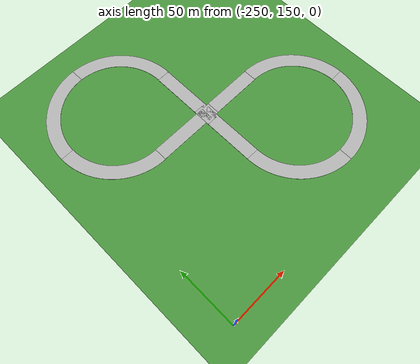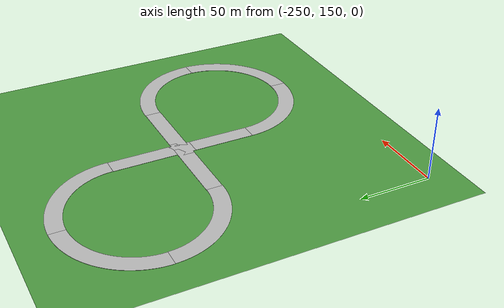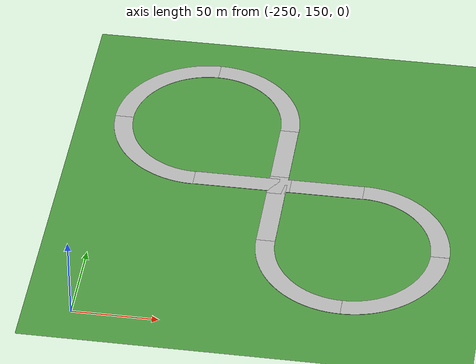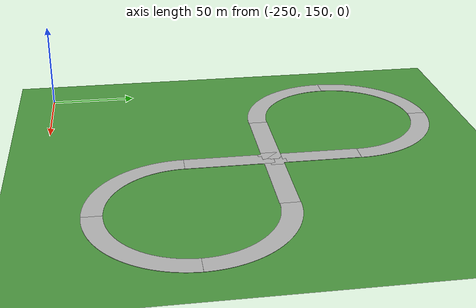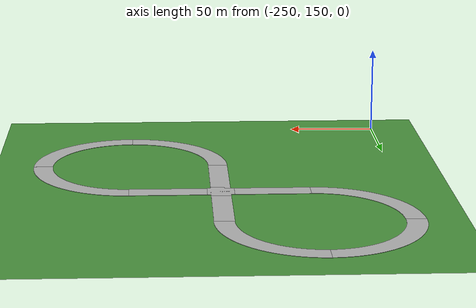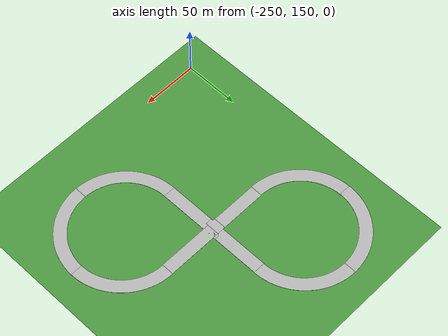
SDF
<sdf version="1.6">
 <world name="default">
  <light name="sun" type="directional">
   <pose>0 0 10 0 -0 0</pose>
   <diffuse>0.8 0.8 0.8 1</diffuse>
   <specular>0.2 0.2 0.2 1</specular>
   <attenuation>
    <range>1000</range>
    <constant>0.9</constant>
    <linear>0.01</linear>
    <quadratic>0.001</quadratic>
   </attenuation>
   <direction>-0.5 0.1 -0.9</direction>
  </light>
  <model name="ground_plane">
   <static>1</static>
   <link name="link">
    <collision name="collision">
     <geometry><plane><normal>0 0 1</normal><size>100 100</size></plane></geometry>
     <surface><friction><ode><mu>100</mu><mu2>50</mu2></ode></friction></surface>
    </collision>
    <visual name="visual">
     <cast_shadows>0</cast_shadows>
     <geometry><plane><normal>0 0 1</normal><size>10000 10000</size></plane></geometry>
     <material>
      <script>
       <uri>model://grass_background/materials/scripts</uri>
       <uri>model://grass_background/materials/textures</uri>
       <name>GrassBackground</name>
      </script>
     </material>
    </visual>
   </link>
  </model>
  <gravity>0 0 -9.8</gravity>
  <magnetic_field>6e-06 2.3e-05 -4.2e-05</magnetic_field>
  <atmosphere type="adiabatic"/>
  <physics name="default_physics" default="0" type="ode">
   <max_step_size>0.005</max_step_size>
   <real_time_factor>1</real_time_factor>
   <real_time_update_rate>200</real_time_update_rate>
  </physics>
  <scene>
   <ambient>0.4 0.4 0.4 1</ambient>
   <background>0.7 0.7 0.7 1</background>
   <shadows>1</shadows>
   <grid>0</grid>
  </scene>
  <spherical_coordinates>
   <surface_model>EARTH_WGS84</surface_model>
   <latitude_deg>0</latitude_deg>
   <longitude_deg>0</longitude_deg>
   <elevation>0</elevation>
   <heading_deg>0</heading_deg>
  </spherical_coordinates>
  <model name="Straight Road - 50m_0">
   <static>1</static>
   <link name="link">
    <inertial>
     <mass>1</mass>
     <inertia><ixx>1</ixx><iyy>1</iyy><izz>1</izz><ixy>0</ixy><ixz>0</ixz><iyz>0</iyz></inertia>
    </inertial>
    <collision name="collision">
     <geometry>
      <mesh><uri>model://straight_road_50m/meshes/straight_road_50m.dae</uri><scale>1 1 1</scale></mesh>
     </geometry>
    </collision>
    <visual name="visual">
     <geometry>
      <mesh><uri>model://straight_road_50m/meshes/straight_road_50m.dae</uri><scale>1 1 1</scale></mesh>
     </geometry>
    </visual>
   </link>
   <pose>-125.33 264.098 0 0 -0 3.14159</pose>
  </model>
  <model name="Intersection_15">
   <static>1</static>
   <link name="link">
    <inertial>
     <mass>1</mass>
     <inertia><ixx>1</ixx><iyy>1</iyy><izz>1</izz><ixy>0</ixy><ixz>0</ixz><iyz>0</iyz></inertia>
    </inertial>
    <collision name="collision">
     <geometry><mesh><uri>model://intersection/meshes/intersection.dae</uri><scale>1 1 1</scale></mesh></geometry>
    </collision>
    <visual name="visual">
     <geometry><mesh><uri>model://intersection/meshes/intersection.dae</uri><scale>1 1 1</scale></mesh></geometry>
    </visual>
   </link>
   <pose>-150.742 273.966 0 0 -0 0</pose>
  </model>
  <model name="Straight Road - 50m_9">
   <static>1</static>
   <link name="link">
    <inertial>
     <mass>1</mass>
     <inertia><ixx>1</ixx><iyy>1</iyy><izz>1</izz><ixy>0</ixy><ixz>0</ixz><iyz>0</iyz></inertia>
    </inertial>
    <collision name="collision">
     <geometry>
      <mesh><uri>model://straight_road_50m/meshes/straight_road_50m.dae</uri><scale>1 1 1</scale></mesh>
     </geometry>
    </collision>
    <visual name="visual">
     <geometry>
      <mesh><uri>model://straight_road_50m/meshes/straight_road_50m.dae</uri><scale>1 1 1</scale></mesh>
     </geometry>
    </visual>
   </link>
   <pose>-175.153 284.011 0 0 -0 0</pose>
  </model>
  <audio><device>default</device></audio>
  <model name="Straight Road - 50m_8_clone">
   <static>1</static>
   <link name="link">
    <inertial>
     <mass>1</mass>
     <inertia><ixx>1</ixx><iyy>1</iyy><izz>1</izz><ixy>0</ixy><ixz>0</ixz><iyz>0</iyz></inertia>
    </inertial>
    <collision name="collision">
     <geometry>
      <mesh><uri>model://straight_road_50m/meshes/straight_road_50m.dae</uri><scale>1 1 1</scale></mesh>
     </geometry>
    </collision>
    <visual name="visual">
     <geometry>
      <mesh><uri>model://straight_road_50m/meshes/straight_road_50m.dae</uri><scale>1 1 1</scale></mesh>
     </geometry>
    </visual>
   </link>
   <pose>-160.786 249.711 0 0 -0 1.5707</pose>
  </model>
  <model name="Straight Road - 50m_8_clone_0">
   <static>1</static>
   <link name="link">
    <inertial>
     <mass>1</mass>
     <inertia><ixx>1</ixx><iyy>1</iyy><izz>1</izz><ixy>0</ixy><ixz>0</ixz><iyz>0</iyz></inertia>
    </inertial>
    <collision name="collision">
     <geometry>
      <mesh><uri>model://straight_road_50m/meshes/straight_road_50m.dae</uri><scale>1 1 1</scale></mesh>
     </geometry>
    </collision>
    <visual name="visual">
     <geometry>
      <mesh><uri>model://straight_road_50m/meshes/straight_road_50m.dae</uri><scale>1 1 1</scale></mesh>
     </geometry>
    </visual>
   </link>
   <pose>-160.69 298.739 0 0 -0 1.5707</pose>
  </model>
  <model name="Curved Road - 50m_6_clone">
   <static>1</static>
   <link name="link">
    <inertial>
     <mass>1</mass>
     <inertia><ixx>1</ixx><iyy>1</iyy><izz>1</izz><ixy>0</ixy><ixz>0</ixz><iyz>0</iyz></inertia>
    </inertial>
    <collision name="collision">
     <geometry>
      <mesh><uri>model://curved_road_50m/meshes/curved_road_50m.dae</uri><scale>1 1 1</scale></mesh>
     </geometry>
    </collision>
    <visual name="visual">
     <geometry>
      <mesh><uri>model://curved_road_50m/meshes/curved_road_50m.dae</uri><scale>1 1 1</scale></mesh>
     </geometry>
    </visual>
   </link>
   <pose>-172.763 351.503 0 0 -0 1.5707</pose>
  </model>
  <model name="Curved Road - 50m_5_clone">
   <static>1</static>
   <link name="link">
    <inertial>
     <mass>1</mass>
     <inertia><ixx>1</ixx><iyy>1</iyy><izz>1</izz><ixy>0</ixy><ixz>0</ixz><iyz>0</iyz></inertia>
    </inertial>
    <collision name="collision">
     <geometry>
      <mesh><uri>model://curved_road_50m/meshes/curved_road_50m.dae</uri><scale>1 1 1</scale></mesh>
     </geometry>
    </collision>
    <visual name="visual">
     <geometry>
      <mesh><uri>model://curved_road_50m/meshes/curved_road_50m.dae</uri><scale>1 1 1</scale></mesh>
     </geometry>
    </visual>
   </link>
   <pose>-227.831 296.058 0 0 0 -1.5707</pose>
  </model>
  <model name="Curved Road - 50m_4_clone">
   <static>1</static>
   <link name="link">
    <inertial>
     <mass>1</mass>
     <inertia><ixx>1</ixx><iyy>1</iyy><izz>1</izz><ixy>0</ixy><ixz>0</ixz><iyz>0</iyz></inertia>
    </inertial>
    <collision name="collision">
     <geometry>
      <mesh><uri>model://curved_road_50m/meshes/curved_road_50m.dae</uri><scale>1 1 1</scale></mesh>
     </geometry>
    </collision>
    <visual name="visual">
     <geometry>
      <mesh><uri>model://curved_road_50m/meshes/curved_road_50m.dae</uri><scale>1 1 1</scale></mesh>
     </geometry>
    </visual>
   </link>
   <pose>-227.97 351.484 0 0 -0 3.14159</pose>
  </model>
  <model name="Curved Road - 50m_6_clone_clone">
   <static>1</static>
   <link name="link">
    <inertial>
     <mass>1</mass>
     <inertia><ixx>1</ixx><iyy>1</iyy><izz>1</izz><ixy>0</ixy><ixz>0</ixz><iyz>0</iyz></inertia>
    </inertial>
    <collision name="collision">
     <geometry>
      <mesh><uri>model://curved_road_50m/meshes/curved_road_50m.dae</uri><scale>1 1 1</scale></mesh>
     </geometry>
    </collision>
    <visual name="visual">
     <geometry>
      <mesh><uri>model://curved_road_50m/meshes/curved_road_50m.dae</uri><scale>1 1 1</scale></mesh>
     </geometry>
    </visual>
   </link>
   <pose>-72.6233 252.022 0 0 -0 1.5707</pose>
  </model>
  <model name="Curved Road - 50m_5_clone_clone">
   <static>1</static>
   <link name="link">
    <inertial>
     <mass>1</mass>
     <inertia><ixx>1</ixx><iyy>1</iyy><izz>1</izz><ixy>0</ixy><ixz>0</ixz><iyz>0</iyz></inertia>
    </inertial>
    <collision name="collision">
     <geometry>
      <mesh><uri>model://curved_road_50m/meshes/curved_road_50m.dae</uri><scale>1 1 1</scale></mesh>
     </geometry>
    </collision>
    <visual name="visual">
     <geometry>
      <mesh><uri>model://curved_road_50m/meshes/curved_road_50m.dae</uri><scale>1 1 1</scale></mesh>
     </geometry>
    </visual>
   </link>
   <pose>-128.543 197.028 0 0 0 -1.5707</pose>
  </model>
  <model name="Curved Road - 50m_4_clone_clone">
   <static>1</static>
   <link name="link">
    <inertial>
     <mass>1</mass>
     <inertia><ixx>1</ixx><iyy>1</iyy><izz>1</izz><ixy>0</ixy><ixz>0</ixz><iyz>0</iyz></inertia>
    </inertial>
    <collision name="collision">
     <geometry>
      <mesh><uri>model://curved_road_50m/meshes/curved_road_50m.dae</uri><scale>1 1 1</scale></mesh>
     </geometry>
    </collision>
    <visual name="visual">
     <geometry>
      <mesh><uri>model://curved_road_50m/meshes/curved_road_50m.dae</uri><scale>1 1 1</scale></mesh>
     </geometry>
    </visual>
   </link>
   <pose>-72.8675 196.761 0 0 0 -0.009167</pose>
  </model>
 </world>
</sdf>
